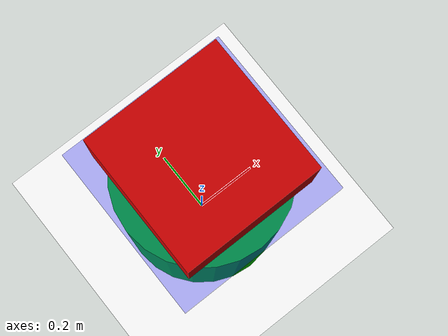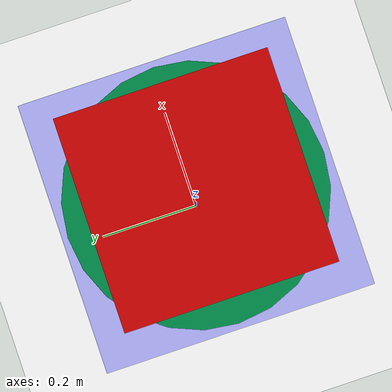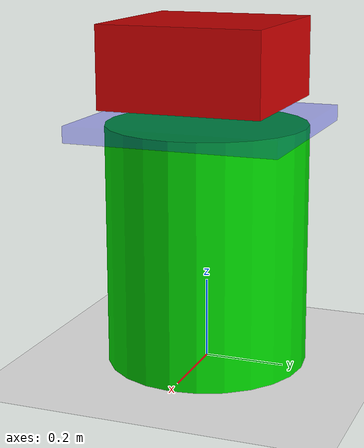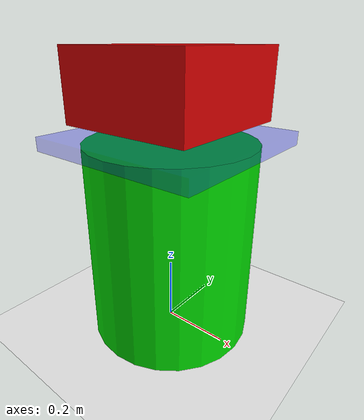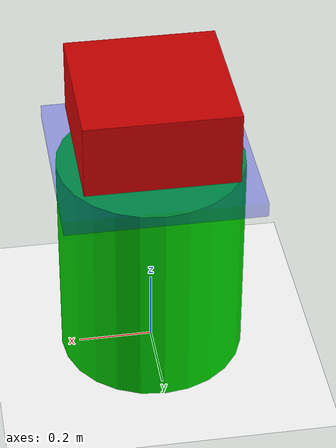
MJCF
<mujoco>
	<option gravity="0 0 -9.81">
		<flag contact="enable" />
	</option>
	<worldbody>
        <light diffuse=".5 .5 .5" pos="0 0 5" dir="0 0 -1" />
		<geom type="plane" size="20 20 0.1" rgba="1 1 1 1" />

        <!-- Fixed pedestal carrying a touch sensing site on its top face -->
        <body name="pedestal" pos="0 0 0.3" euler="0 0 0">
            <geom type="cylinder" size="0.25 0.3" rgba="0 .8 0 1" />
            <inertial pos="0 0 0" mass="10" diaginertia="1.0 1.0 1.0" />
            <!-- The touch sensor sums normal contact forces inside this site volume.
                 The site straddles the pedestal top (world z = 0.6). -->
            <site name="contact_touch" type="box" size="0.26 0.26 0.02" pos="0 0 0.3" rgba="0 0 1 0.3" />
        </body>

        <!-- Weight that settles onto the pedestal, loading the touch site -->
        <body name="weight" pos="0 0 0.75" euler="0 0 0">
            <freejoint name="world_to_weight" />
            <geom type="box" size="0.2 0.2 0.1" rgba=".8 0 0 1" />
            <inertial pos="0 0 0" mass="5" diaginertia="0.1 0.1 0.1" />
        </body>
	</worldbody>
    <sensor>
        <touch name="contact_touch" site="contact_touch" />
    </sensor>
</mujoco>
